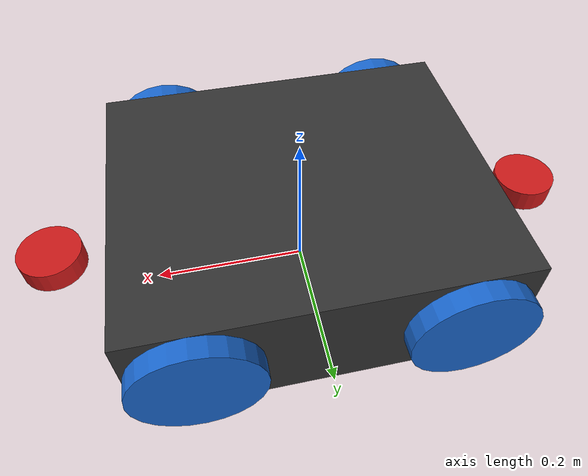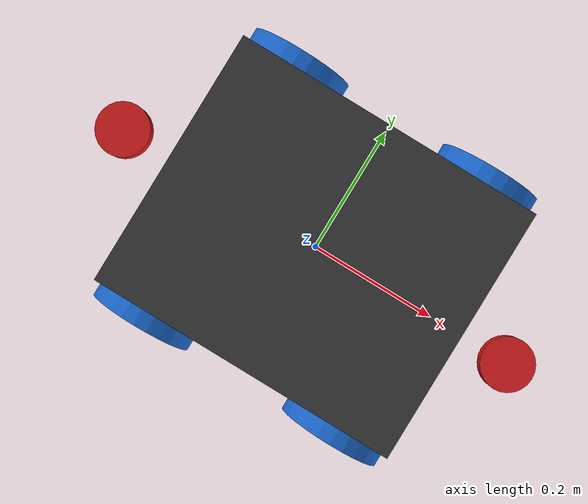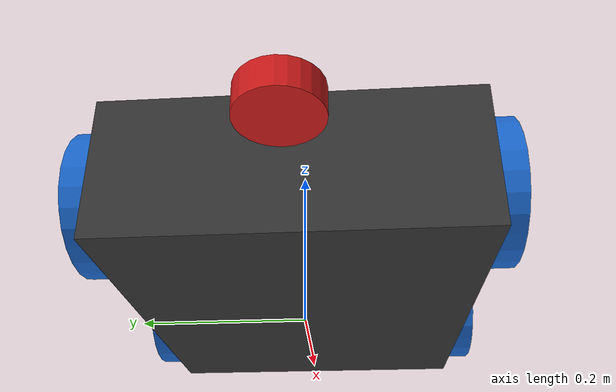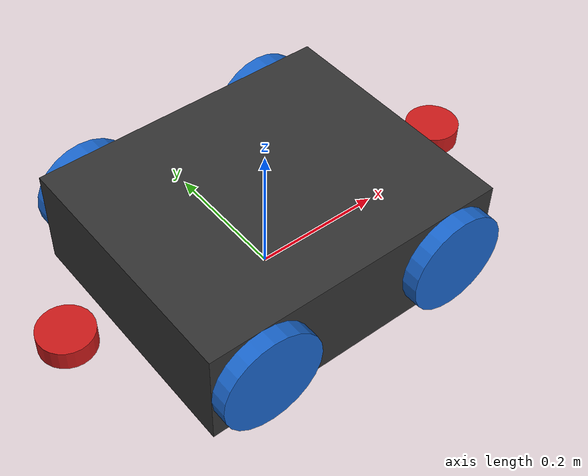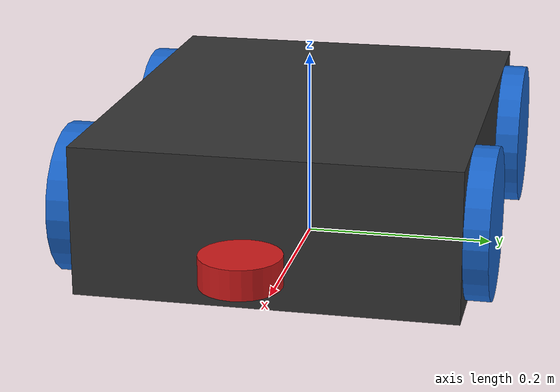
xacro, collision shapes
<?xml version="1.0"?>
<robot name="guardian" xmlns:xacro="http://www.ros.org/wiki/xacro" xmlns:gz="http://gazebosim.org/schema">

  <xacro:include filename="$(find guardian_description)/urdf/dimensions.xacro"/>

  <!-- ── Materials ─────────────────────────────────────────────────────────── -->
  <material name="dark_grey"><color rgba="0.2 0.2 0.2 1.0"/></material>
  <material name="blue">    <color rgba="0.1 0.4 0.8 1.0"/></material>
  <material name="red">     <color rgba="0.8 0.1 0.1 1.0"/></material>

  <!-- ── Chassis ───────────────────────────────────────────────────────────── -->
  <link name="base_link">
    <visual>
      <origin xyz="0 0 0" rpy="0 0 0"/>
      <geometry><mesh filename="package://guardian_description/meshes/chassis.stl"/></geometry>
      <material name="dark_grey"/>
    </visual>
    <collision>
      <origin xyz="0 0 ${wheel_radius}" rpy="0 0 0"/>
      <geometry><box size="${wheel_base_length + 2*wheel_radius} ${wheel_base_width} ${2*wheel_radius}"/></geometry>
    </collision>
    <inertial>
      <origin xyz="0 0 0.05" rpy="0 0 0"/>
      <mass value="4.0"/>
      <inertia ixx="0.01517" ixy="0" ixz="0"
               iyy="0.02250" iyz="0"
               izz="0.03118"/>
    </inertial>
  </link>

  <!-- ── Wheels ────────────────────────────────────────────────────────────── -->
  <xacro:macro name="wheel" params="name x y roller_dir">
    <link name="${name}_wheel">
      <visual>
        <origin xyz="0 0 0" rpy="0 0 0"/>
        <geometry><mesh filename="package://guardian_description/meshes/wheel.stl"/></geometry>
        <material name="blue"/>
      </visual>
      <collision>
        <origin xyz="0 0 0" rpy="1.5708 0 0"/>
        <geometry><cylinder radius="${wheel_radius}" length="0.05"/></geometry>
      </collision>
      <inertial>
        <mass value="0.5"/>
        <!-- solid cylinder: ixx=iyy=m(3r²+h²)/12, izz=mr²/2 -->
        <inertia ixx="0.001561" ixy="0" ixz="0"
                 iyy="0.001561" iyz="0"
                 izz="0.001401"/>
      </inertial>
    </link>
    <joint name="${name}_wheel_joint" type="continuous">
      <parent link="base_link"/>
      <child  link="${name}_wheel"/>
      <origin xyz="${x} ${y} ${wheel_radius}" rpy="0 0 0"/>
      <axis xyz="0 1 0"/>
      <dynamics damping="0.01"/>
    </joint>
    <gazebo reference="${name}_wheel">
      <material>Gazebo/Blue</material>
      <collision>
        <surface>
          <friction>
            <ode>
              <mu>1.0</mu>
              <mu2>0.0</mu2>
              <fdir1 gz:expressed_in="base_link">${roller_dir}</fdir1>
            </ode>
          </friction>
        </surface>
      </collision>
    </gazebo>
  </xacro:macro>

  <!-- x/y taken from wheel_base_length/width (measured off the CAD by
       step_to_description.py), not hand-typed — regenerating
       dimensions.xacro from a new CAD revision updates these for free. -->
  <xacro:wheel name="front_left"  x="${ wheel_base_length/2}" y="${ wheel_base_width/2}" roller_dir="1 -1 0"/>
  <xacro:wheel name="front_right" x="${ wheel_base_length/2}" y="${-wheel_base_width/2}" roller_dir="1 1 0"/>
  <xacro:wheel name="rear_left"   x="${-wheel_base_length/2}" y="${ wheel_base_width/2}" roller_dir="1 1 0"/>
  <xacro:wheel name="rear_right"  x="${-wheel_base_length/2}" y="${-wheel_base_width/2}" roller_dir="1 -1 0"/>

  <!-- ── Lidar links ───────────────────────────────────────────────────────── -->
  <xacro:macro name="lidar" params="name x y z gz_topic yaw:=0">
    <link name="${name}">
      <visual>
        <origin xyz="0 0 0" rpy="0 0 0"/>
        <geometry><mesh filename="package://guardian_description/meshes/lidar.stl"/></geometry>
        <material name="red"/>
      </visual>
      <collision>
        <origin xyz="0 0 0.015" rpy="0 0 0"/>
        <geometry><cylinder radius="0.04" length="0.03"/></geometry>
      </collision>
      <inertial>
        <mass value="0.1"/>
        <inertia ixx="0.0001" ixy="0" ixz="0"
                 iyy="0.0001" iyz="0"
                 izz="0.0001"/>
      </inertial>
    </link>
    <joint name="${name}_joint" type="fixed">
      <parent link="base_link"/>
      <child  link="${name}"/>
      <origin xyz="${x} ${y} ${z}" rpy="0 0 ${yaw}"/>
    </joint>
    <gazebo reference="${name}">
      <sensor name="gpu_lidar_${name}" type="gpu_lidar">
        <pose>0 0 0.015 0 0 0</pose>
        <topic>${gz_topic}</topic>
        <gz_frame_id>${name}</gz_frame_id>
        <update_rate>5</update_rate>
        <lidar>
          <scan>
            <horizontal>
              <samples>500</samples>
              <resolution>1</resolution>
              <min_angle>-3.14159265</min_angle>
              <max_angle>3.14159265</max_angle>
            </horizontal>
          </scan>
          <range>
            <min>0.1</min>
            <max>20.0</max>
            <resolution>0.01</resolution>
          </range>
          <noise>
            <type>gaussian</type>
            <mean>0.0</mean>
            <stddev>0.01</stddev>
          </noise>
        </lidar>
        <always_on>true</always_on>
        <visualize>true</visualize>
      </sensor>
    </gazebo>
  </xacro:macro>

  <xacro:lidar name="laser"      x="${lidar_front_x}" y="${lidar_front_y}" z="${lidar_front_z}" yaw="0"        gz_topic="/scan"/>
  <xacro:lidar name="laser_back" x="${lidar_back_x}"  y="${lidar_back_y}"  z="${lidar_back_z}"  yaw="3.14159265" gz_topic="/scan_back"/>

  <!-- ── Gazebo: chassis colour ────────────────────────────────────────────── -->
  <gazebo reference="base_link">
    <material>Gazebo/DarkGrey</material>
  </gazebo>

  <!-- ── Gazebo: MecanumDrive plugin ───────────────────────────────────────── -->
  <gazebo>
    <plugin filename="gz-sim-mecanum-drive-system"
            name="gz::sim::systems::MecanumDrive">
      <front_left_joint>front_left_wheel_joint</front_left_joint>
      <front_right_joint>front_right_wheel_joint</front_right_joint>
      <back_left_joint>rear_left_wheel_joint</back_left_joint>
      <back_right_joint>rear_right_wheel_joint</back_right_joint>
      <wheel_separation>${wheel_base_width}</wheel_separation>
      <wheelbase>${wheel_base_length}</wheelbase>
      <wheel_radius>${wheel_radius}</wheel_radius>
      <odom_publish_frequency>50</odom_publish_frequency>
      <topic>/cmd_vel</topic>
      <odom_topic>/odom</odom_topic>
      <frame_id>odom</frame_id>
      <child_frame_id>base_link</child_frame_id>
      <tf_topic>/tf</tf_topic>
    </plugin>
  </gazebo>

  <!-- ── Gazebo: Joint state publisher ─────────────────────────────────────── -->
  <!-- Only acted on by Gazebo; real hardware uses the standalone
       joint_state_publisher node instead (see guardian.launch.py). -->
  <gazebo>
    <plugin filename="gz-sim-joint-state-publisher-system"
            name="gz::sim::systems::JointStatePublisher">
      <topic>/joint_states</topic>
    </plugin>
  </gazebo>

</robot>

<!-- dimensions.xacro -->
<!-- AUTO-GENERATED by 20_hardware/cad/step_to_description.py from
     ALL_V1.STEP — do not hand-edit, re-run the script instead. -->
<robot xmlns:xacro="http://www.ros.org/wiki/xacro">
  <xacro:property name="wheel_base_length" value="0.313588"/>
  <xacro:property name="wheel_base_width" value="0.390755"/>
  <xacro:property name="wheel_radius" value="0.077500"/>
  <xacro:property name="lidar_front_x" value="0.319650"/>
  <xacro:property name="lidar_front_y" value="0.000000"/>
  <xacro:property name="lidar_front_z" value="0.059863"/>
  <xacro:property name="lidar_back_x" value="-0.319650"/>
  <xacro:property name="lidar_back_y" value="0.000000"/>
  <xacro:property name="lidar_back_z" value="0.059863"/>
</robot>
